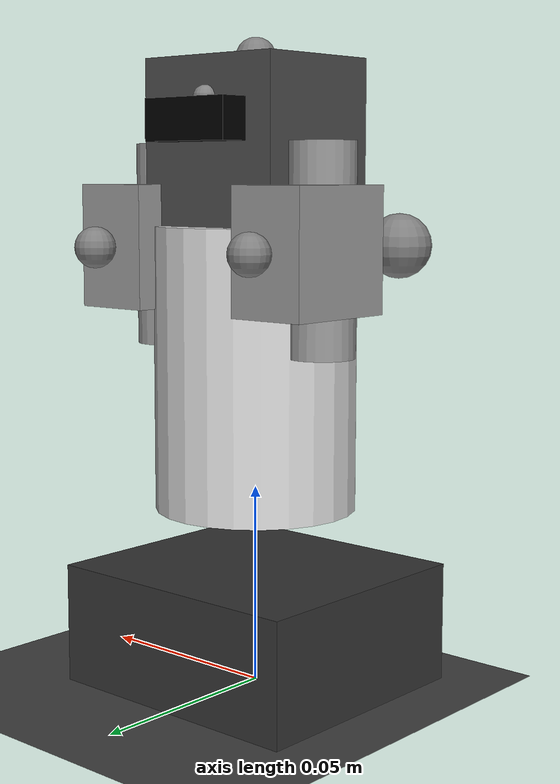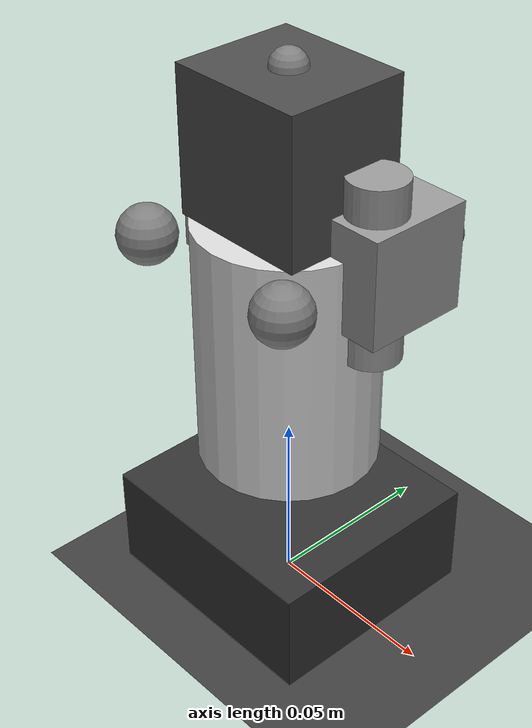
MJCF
<!--
  ElectronBot MuJoCo 场景文件
  包含: 地面、光照、渲染相机配置
-->
<mujoco model="electronbot_scene">
  <include file="electronbot.xml"/>

  <visual>
    <headlight ambient="0.3 0.3 0.3" diffuse="0.6 0.6 0.6"
               specular="0.2 0.2 0.2"/>
    <map fogstart="5" fogend="10" znear="0.001" zfar="50"/>
    <quality shadowsize="2048" offsamples="4"/>
  </visual>

  <statistic center="0 0 0.15" extent="0.3"/>

  <!-- 渲染用离线相机 (在 viewer 中可切换) -->
  <!-- D435 仿真相机已在 electronbot.xml 中通过 d435_camera 定义 -->
</mujoco>

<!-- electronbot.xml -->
<mujoco model="electronbot">
  <compiler angle="radian" meshdir="../../electronbot_description/meshes"
            autolimits="true"/>

  <!-- ==================== 默认设置 ==================== -->
  <default>
    <!-- 关节默认 (参考 hardware_reference.md §10.3 domain rand 基线: damping 5-20) -->
    <joint damping="5" armature="0.005" frictionloss="0.1"/>
    <!-- 位置执行器默认 (DCE 模式时不使用; 基础模式使用各关节独立 kp) -->
    <position kp="10" ctrllimited="true"/>
    <!-- 力矩电机默认 (用于 DCE PID torque control) -->
    <motor ctrllimited="true"/>
    <!-- 几何体默认 -->
    <geom contype="1" conaffinity="1" condim="3" friction="0.5 0.1 0.1"/>
  </default>

  <!-- ==================== 材质 ==================== -->
  <asset>
    <texture name="tex_ground" type="2d" builtin="checker"
             width="512" height="512"
             rgb1="0.2 0.2 0.2" rgb2="0.3 0.3 0.3"/>
    <material name="mat_ground" texture="tex_ground" reflectance="0.2"/>
    <material name="mat_base" rgba="0.2 0.2 0.2 1.0"/>
    <material name="mat_body" rgba="0.85 0.85 0.85 1.0"/>
    <material name="mat_head" rgba="0.3 0.3 0.3 1.0"/>
    <material name="mat_arm" rgba="0.6 0.6 0.6 1.0"/>
    <material name="mat_camera" rgba="0.0 0.0 0.0 1.0"/>
    <material name="mat_target" rgba="1.0 0.2 0.2 0.6"/>
  </asset>

  <!-- ==================== 世界体 (运动学树) ==================== -->
  <worldbody>
    <!-- 地面 -->
    <geom name="floor" type="plane" size="0.5 0.5 0.05" material="mat_ground"/>

    <!-- 光照 -->
    <light name="light_main" directional="true"
           pos="0.3 -0.5 0.8" dir="0 -0.5 -1"/>

    <!-- ====== base_link (固定基座) ====== -->
    <body name="base_link" pos="0 0 0.015">
      <geom name="base_geom" type="box" size="0.035 0.032 0.015"
            material="mat_base"/>
      <site name="base_site" pos="0 0 0" size="0.005"/>

      <!-- ====== body (腰部 Y轴旋转) ====== -->
      <body name="body" pos="0 0 0.03">
        <joint name="body_joint" type="hinge" axis="0 1 0"
               range="-1.5708 1.5708" limited="true"/>
        <geom name="body_geom" type="cylinder" size="0.025 0.035"
              pos="0 0 0.035" material="mat_body"/>
        <site name="body_site" pos="0 0 0.07" size="0.005"/>

        <!-- ====== head (X轴俯仰) ====== -->
        <body name="head" pos="0 0 0.07">
          <joint name="head_joint" type="hinge" axis="1 0 0"
                 range="-0.2618 0.2618" limited="true"/>
          <geom name="head_geom" type="box" size="0.02 0.0175 0.02"
                pos="0 0 0.02" material="mat_head"/>
          <site name="head_site" pos="0 0 0.04" size="0.005"/>

          <!-- IMU 传感器位置 -->
          <site name="imu_site" pos="0 0 0.02" size="0.003"/>

          <!-- D435 仿真相机位置 -->
          <body name="camera_body" pos="0 0.0175 0.025">
            <geom name="camera_geom" type="box" size="0.0125 0.0075 0.005"
                  material="mat_camera"/>
            <site name="camera_site" pos="0 0 0.005" size="0.003"/>
            <!-- 相机 frame (z-forward, y-down convention) -->
            <camera name="d435_camera" pos="0 0 0.005"
                    zaxis="0 0 1" resolution="240 240" fovy="60"/>
          </body>
        </body>

        <!-- ====== 左臂链 ====== -->
        <body name="left_shoulder" pos="0.025 0 0.065">
          <joint name="left_shoulder_joint" type="hinge" axis="1 0 0"
                 range="-0.3491 3.1416" limited="true"/>
          <geom name="left_shoulder_geom" type="box" size="0.01 0.015 0.015"
                pos="0 0.01 0" material="mat_arm"/>
          <site name="left_shoulder_site" pos="0 0.03 0" size="0.005"/>

          <!-- 左臂末端 -->
          <body name="left_arm" pos="0 0.03 0">
            <joint name="left_arm_roll_joint" type="hinge" axis="0 0 1"
                   range="0 0.5236" limited="true"/>
            <geom name="left_arm_geom" type="cylinder" size="0.008 0.025"
                  pos="0 -0.025 0" material="mat_arm"/>
            <!-- 左臂末端执行器位置标记 -->
            <site name="left_ee_site" pos="0 -0.055 0" size="0.008"/>
          </body>
        </body>

        <!-- ====== 右臂链 ====== -->
        <body name="right_shoulder" pos="-0.025 0 0.065">
          <joint name="right_shoulder_joint" type="hinge" axis="1 0 0"
                 range="-0.3491 3.1416" limited="true"/>
          <geom name="right_shoulder_geom" type="box" size="0.01 0.015 0.015"
                pos="0 0.01 0" material="mat_arm"/>
          <site name="right_shoulder_site" pos="0 0.03 0" size="0.005"/>

          <!-- 右臂末端 -->
          <body name="right_arm" pos="0 0.03 0">
            <joint name="right_arm_roll_joint" type="hinge" axis="0 0 1"
                   range="0 0.5236" limited="true"/>
            <geom name="right_arm_geom" type="cylinder" size="0.008 0.025"
                  pos="0 -0.025 0" material="mat_arm"/>
            <!-- 右臂末端执行器位置标记 -->
            <site name="right_ee_site" pos="0 -0.055 0" size="0.008"/>
          </body>
        </body>
      </body>
    </body>
  </worldbody>

  <!-- ==================== 执行器 ==================== -->
  <actuator>
    <!-- 位置控制执行器 (6个) - 基础模式; 固件模式下 negligible (forcerange=0.01) -->
    <position name="act_body"          joint="body_joint"            kp="5" kv="1" forcerange="-0.01 0.01" ctrlrange="-1.5708 1.5708"/>
    <position name="act_head"          joint="head_joint"            kp="3" kv="1" forcerange="-0.01 0.01" ctrlrange="-0.2618 0.2618"/>
    <position name="act_left_shoulder"  joint="left_shoulder_joint"  kp="5" kv="1" forcerange="-0.01 0.01" ctrlrange="-0.3491 3.1416"/>
    <position name="act_left_arm_roll" joint="left_arm_roll_joint"   kp="5" kv="1" forcerange="-0.01 0.01" ctrlrange="0 0.5236"/>
    <position name="act_right_shoulder" joint="right_shoulder_joint" kp="5" kv="1" forcerange="-0.01 0.01" ctrlrange="-0.3491 3.1416"/>
    <position name="act_right_arm_roll" joint="right_arm_roll_joint" kp="5" kv="1" forcerange="-0.01 0.01" ctrlrange="0 0.5236"/>

    <!-- 力矩电机 (6个) - DCE PID / impedance 模式; forcerange 对应实机 torque_limit × PWM_max/1000 × 0.3Nm -->
    <motor name="motor_body"           joint="body_joint"            ctrlrange="-0.5 0.5"/>
    <motor name="motor_head"           joint="head_joint"            ctrlrange="-0.25 0.25"/>
    <motor name="motor_left_shoulder"  joint="left_shoulder_joint"   ctrlrange="-0.5 0.5"/>
    <motor name="motor_left_arm_roll"  joint="left_arm_roll_joint"   ctrlrange="-1.0 1.0"/>
    <motor name="motor_right_shoulder" joint="right_shoulder_joint"  ctrlrange="-0.5 0.5"/>
    <motor name="motor_right_arm_roll" joint="right_arm_roll_joint"  ctrlrange="-1.0 1.0"/>
  </actuator>

  <!-- ==================== 传感器 ==================== -->
  <sensor>
    <!-- IMU (accelerometer + gyroscope) -->
    <accelerometer name="imu_accel" site="imu_site"/>
    <gyro name="imu_gyro" site="imu_site"/>

    <!-- 关节位置 (6个) -->
    <jointpos name="jpos_body"            joint="body_joint"/>
    <jointpos name="jpos_head"            joint="head_joint"/>
    <jointpos name="jpos_left_shoulder"   joint="left_shoulder_joint"/>
    <jointpos name="jpos_left_arm_roll"   joint="left_arm_roll_joint"/>
    <jointpos name="jpos_right_shoulder"  joint="right_shoulder_joint"/>
    <jointpos name="jpos_right_arm_roll"  joint="right_arm_roll_joint"/>

    <!-- 关节速度 (6个) -->
    <jointvel name="jvel_body"            joint="body_joint"/>
    <jointvel name="jvel_head"            joint="head_joint"/>
    <jointvel name="jvel_left_shoulder"   joint="left_shoulder_joint"/>
    <jointvel name="jvel_left_arm_roll"   joint="left_arm_roll_joint"/>
    <jointvel name="jvel_right_shoulder"  joint="right_shoulder_joint"/>
    <jointvel name="jvel_right_arm_roll"  joint="right_arm_roll_joint"/>

    <!-- 末端执行器位置 (6D: left_ee + right_ee) -->
    <framepos name="left_ee_pos"  objtype="site" objname="left_ee_site"/>
    <framepos name="right_ee_pos" objtype="site" objname="right_ee_site"/>

    <!-- 仿真相机 (RGB-D) 位于 d435_camera 对象 -->
    <!-- MuJoCo 原生 camera 渲染输出由 scene.xml 中的 visual 节点控制 -->
  </sensor>
</mujoco>
